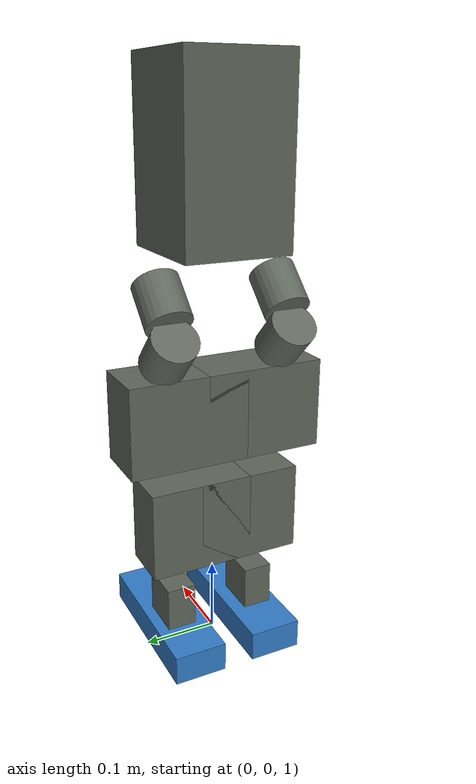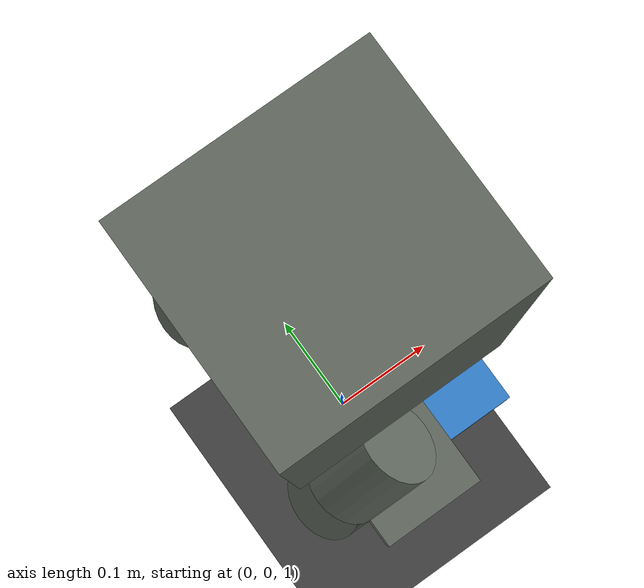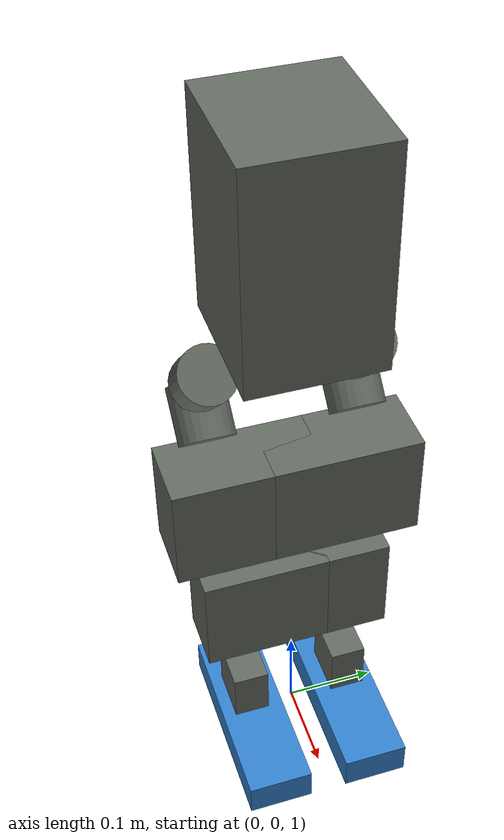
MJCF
<mujoco model="hylion_v6">

  <!-- 모든 각도를 라디안으로 해석 (BHL biped 원본과 동일) -->
  <compiler angle="radian" autolimits="true"/>

  <!-- ── 시뮬레이션 옵션 ──────────────────────────────────────── -->
  <option
    timestep="0.005"
    gravity="0 0 -9.81"
    iterations="50"
    noslip_iterations="4"
    ls_iterations="50"
    integrator="RK4"
  />

  <!-- ── 기본 geom 속성 (self-collision 비활성화) ──────────────── -->
  <!--
    로봇 geom: contype=1  conaffinity=0  → 지면하고만 충돌
    지면 geom: contype=0  conaffinity=1
    → 로봇끼리 self-collision 없음 (IsaacLab enabled_self_collisions=False 대응)
  -->
  <default>
    <geom contype="1" conaffinity="0" friction="0.8 0.1 0.1" condim="3"/>
    <joint damping="0.01" armature="0.007" frictionloss="0.1"/>
    <motor ctrllimited="true" ctrlrange="-6 6"/>
  </default>

  <!-- ── 자산 ───────────────────────────────────────────────── -->
  <asset>
    <texture type="skybox" builtin="gradient" rgb1="0.4 0.6 0.8" rgb2="0 0 0" width="512" height="512"/>
    <texture name="texplane" type="2d" builtin="checker"
             rgb1="0.2 0.2 0.2" rgb2="0.3 0.3 0.3" width="512" height="512"/>
    <material name="matplane" texture="texplane" texrepeat="4 4" reflectance="0.2"/>
    <material name="robot"   rgba="0.38 0.41 0.37 1"/>
    <material name="ankle"   rgba="0.2  0.5  0.8  1"/>
  </asset>

  <!-- ── 월드 바디 ──────────────────────────────────────────── -->
  <worldbody>

    <!-- 조명 -->
    <light name="sun"   pos="0 0 3"  dir="0 0 -1"  diffuse="0.9 0.9 0.9"/>
    <light name="fill"  pos="2 2 2"  dir="-1 -1 -1" diffuse="0.4 0.4 0.4"/>

    <!-- 지면 (conaffinity=1, contype=0 → 로봇하고만 충돌) -->
    <geom name="ground"
          type="plane" size="5 5 0.05"
          contype="0" conaffinity="1"
          friction="0.8 0.1 0.1"
          material="matplane"/>

    <!-- ────────────────────────────────────────────────────────
         BASE  (freejoint → 공중 자유 운동)
    ──────────────────────────────────────────────────────────── -->
    <body name="base" pos="0 0 0.95">

      <!-- 자유 관절: IsaacLab의 floating-base 대응 -->
      <freejoint name="root"/>

      <!-- IMU 센서 부착점 -->
      <site name="imu_site" pos="0.0617 0 0.68" size="0.005"/>

      <!-- base inertial: BHL biped 기준 CoM (z=0.638), 질량 4.83 kg -->
      <!-- body_ipos=[0,0,0.71] 오류 방지 — 자동계산 억제용 -->
      <inertial pos="-0.00462 0.000372 0.6379"
                mass="4.83"
                fullinertia="0.0569 0.0432 0.0270 -6.2e-6 -0.00110 -2.3e-5"/>

      <!-- base 충돌 box (BHL collision box 기준) -->
      <geom name="base_col"
            type="box" size="0.075 0.07 0.115"
            pos="0 0 0.71"
            material="robot"/>

      <!-- ──────────────────────────────────────────────────────
           LEFT LEG
      ──────────────────────────────────────────────────────── -->

      <!-- hip_roll_L -->
      <body name="leg_left_hip_roll"
            pos="-0.029092 0.080000 0.542631"
            quat="0.92388 0.0 0.38268 0.0">
        <joint name="leg_left_hip_roll_joint" type="hinge"
               axis="0 0 1"
               range="-0.174533 1.5708"
               damping="0.01" armature="0.007"/>
        <geom name="lhiproll_col" type="cylinder" size="0.03 0.03" material="robot"/>
        <inertial pos="-0.00411 -0.000113 -0.04646"
                  mass="0.8379"
                  diaginertia="0.0025 0.0025 0.0010"/>

        <!-- hip_yaw_L -->
        <body name="leg_left_hip_yaw"
              pos="0.027000 0.000000 -0.052000"
              quat="0.5 -0.5 0.5 -0.5">
          <joint name="leg_left_hip_yaw_joint" type="hinge"
                 axis="0 0 1"
                 range="-0.981748 0.589049"
                 damping="0.01" armature="0.007"/>
          <geom name="lhipyaw_col" type="cylinder" size="0.03 0.03" material="robot"/>
          <inertial pos="-0.00412 -0.0000863 0.04633"
                    mass="0.8377"
                    diaginertia="0.0025 0.0025 0.0010"/>

          <!-- hip_pitch_L -->
          <body name="leg_left_hip_pitch"
                pos="0.027000 0.000000 0.052000"
                quat="0.65328 0.2706 -0.65328 -0.2706">
            <joint name="leg_left_hip_pitch_joint" type="hinge"
                   axis="0 0 1"
                   range="-1.89805 0.981748"
                   damping="0.01" armature="0.007"/>
            <geom name="lhippitch_col" type="box" size="0.04 0.06 0.08"
                  pos="0 0.06 0" material="robot"/>
            <inertial pos="0.00304 0.12039 0.02109"
                      mass="0.9480"
                      diaginertia="0.004 0.001 0.004"/>

            <!-- knee_L -->
            <body name="leg_left_knee_pitch"
                  pos="0.000000 0.150000 -0.018000"
                  quat="0.0 0.0 0.0 -1.0">
              <joint name="leg_left_knee_pitch_joint" type="hinge"
                     axis="0 0 1"
                     range="0 2.44346"
                     damping="0.01" armature="0.007"/>
              <geom name="lknee_col" type="box" size="0.035 0.06 0.07"
                    pos="0 -0.06 0" material="robot"/>
              <inertial pos="-0.0000414 -0.11225 0.02574"
                        mass="0.6539"
                        diaginertia="0.003 0.001 0.003"/>

              <!-- ankle_pitch_L -->
              <body name="leg_left_ankle_pitch"
                    pos="0.000000 -0.160000 -0.003000"
                    quat="0.0 0.0 0.0 -1.0">
                <joint name="leg_left_ankle_pitch_joint" type="hinge"
                       axis="0 0 1"
                       range="-0.785398 0.785398"
                       damping="0.01" armature="0.002"/>
                <geom name="lanklepitch_col" type="box" size="0.03 0.03 0.02"
                      pos="0.013 0.027 0.027" material="robot"/>
                <inertial pos="0.01311 0.02737 0.02742"
                          mass="0.1062"
                          diaginertia="0.0003 0.0003 0.0002"/>

                <!-- ankle_roll_L -->
                <body name="leg_left_ankle_roll"
                      pos="0.030000 0.050000 0.025000"
                      quat="0.70711 0.0 0.70711 0.0">
                  <joint name="leg_left_ankle_roll_joint" type="hinge"
                         axis="0 0 1"
                         range="-0.261799 0.261799"
                         damping="0.01" armature="0.002"/>
                  <!-- foot collision: BHL biped 기준 foot geom (quat=90°RX: long axis→world-z OK) -->
                  <geom name="lfoot_col" type="box" size="0.036 0.11 0.02"
                        pos="0.0 0.03 0.006" quat="0.707107 0.707107 0 0" material="ankle"/>
                  <inertial pos="0.000023 0.022661 0.019784"
                            mass="0.7065"
                            diaginertia="0.002 0.001 0.002"/>
                </body><!-- ankle_roll_L -->

              </body><!-- ankle_pitch_L -->
            </body><!-- knee_L -->
          </body><!-- hip_pitch_L -->
        </body><!-- hip_yaw_L -->
      </body><!-- hip_roll_L -->

      <!-- ──────────────────────────────────────────────────────
           RIGHT LEG
      ──────────────────────────────────────────────────────── -->

      <!-- hip_roll_R -->
      <body name="leg_right_hip_roll"
            pos="-0.029092 -0.080000 0.542631"
            quat="0.0 0.38268 -0.0 0.92388">
        <joint name="leg_right_hip_roll_joint" type="hinge"
               axis="0 0 1"
               range="-1.5708 0.174533"
               damping="0.01" armature="0.007"/>
        <geom name="rhiproll_col" type="cylinder" size="0.03 0.03" material="robot"/>
        <inertial pos="0.00411 -0.000185 -0.04645"
                  mass="0.8379"
                  diaginertia="0.0025 0.0025 0.0010"/>

        <!-- hip_yaw_R -->
        <body name="leg_right_hip_yaw"
              pos="-0.027000 0.000000 -0.052000"
              quat="0.5 -0.5 -0.5 0.5">
          <joint name="leg_right_hip_yaw_joint" type="hinge"
                 axis="0 0 1"
                 range="-0.589049 0.981748"
                 damping="0.01" armature="0.007"/>
          <geom name="rhipyaw_col" type="cylinder" size="0.03 0.03" material="robot"/>
          <inertial pos="0.00412 -0.0000139 0.04632"
                    mass="0.8377"
                    diaginertia="0.0025 0.0025 0.0010"/>

          <!-- hip_pitch_R -->
          <body name="leg_right_hip_pitch"
                pos="-0.027000 0.000000 0.052000"
                quat="0.65328 0.2706 -0.65328 -0.2706">
            <joint name="leg_right_hip_pitch_joint" type="hinge"
                   axis="0 0 1"
                   range="-1.89805 0.981748"
                   damping="0.01" armature="0.007"/>
            <geom name="rhippitch_col" type="box" size="0.04 0.06 0.08"
                  pos="0 0.06 0" material="robot"/>
            <inertial pos="0.00320 0.12039 -0.02109"
                      mass="0.9480"
                      diaginertia="0.004 0.001 0.004"/>

            <!-- knee_R -->
            <body name="leg_right_knee_pitch"
                  pos="0.000000 0.150000 0.018000"
                  quat="1 0 0 0">
              <joint name="leg_right_knee_pitch_joint" type="hinge"
                     axis="0 0 1"
                     range="0 2.44346"
                     damping="0.01" armature="0.007"/>
              <geom name="rknee_col" type="box" size="0.035 0.06 0.07"
                    pos="0 0.06 0" material="robot"/>
              <inertial pos="-0.0000509 0.11225 -0.02574"
                        mass="0.6539"
                        diaginertia="0.003 0.001 0.003"/>

              <!-- ankle_pitch_R -->
              <body name="leg_right_ankle_pitch"
                    pos="0.000000 0.160000 0.003000"
                    quat="1 0 0 0">
                <joint name="leg_right_ankle_pitch_joint" type="hinge"
                       axis="0 0 1"
                       range="-0.785398 0.785398"
                       damping="0.01" armature="0.002"/>
                <geom name="ranklepitch_col" type="box" size="0.03 0.03 0.02"
                      pos="0.013 0.027 -0.027" material="robot"/>
                <inertial pos="0.01311 0.02737 -0.02742"
                          mass="0.1062"
                          diaginertia="0.0003 0.0003 0.0002"/>

                <!-- ankle_roll_R -->
                <body name="leg_right_ankle_roll"
                      pos="0.030000 0.050000 -0.025000"
                      quat="0.70711 0.0 0.70711 0.0">
                  <joint name="leg_right_ankle_roll_joint" type="hinge"
                         axis="0 0 1"
                         range="-0.261799 0.261799"
                         damping="0.01" armature="0.002"/>
                  <!-- foot collision: BHL biped 기준 foot geom (quat=90°RX: long axis→world-z OK) -->
                  <geom name="rfoot_col" type="box" size="0.036 0.11 0.02"
                        pos="0.0 0.03 0.006" quat="0.707107 0.707107 0 0" material="ankle"/>
                  <inertial pos="0.000023 0.022661 0.019784"
                            mass="0.7065"
                            diaginertia="0.002 0.001 0.002"/>
                </body><!-- ankle_roll_R -->

              </body><!-- ankle_pitch_R -->
            </body><!-- knee_R -->
          </body><!-- hip_pitch_R -->
        </body><!-- hip_yaw_R -->
      </body><!-- hip_roll_R -->

      <body name="soarm_left" pos="0.0 0.12 0.75">
        <inertial pos="0 0 -0.1" mass="3.44" diaginertia="0.025 0.025 0.005"/>
      </body><!-- soarm_left -->

      <body name="soarm_right" pos="0.0 -0.12 0.75">
        <inertial pos="0 0 -0.1" mass="3.44" diaginertia="0.025 0.025 0.005"/>
      </body><!-- soarm_right -->

    </body><!-- base -->
  </worldbody>

  <!-- ── Actuator (motor 타입: ctrl = torque, PD는 외부에서 계산) ── -->
  <actuator>
    <!-- LEFT LEG -->
    <motor name="leg_left_hip_roll_joint"   joint="leg_left_hip_roll_joint"   ctrlrange="-6 6"/>
    <motor name="leg_left_hip_yaw_joint"    joint="leg_left_hip_yaw_joint"    ctrlrange="-6 6"/>
    <motor name="leg_left_hip_pitch_joint"  joint="leg_left_hip_pitch_joint"  ctrlrange="-6 6"/>
    <motor name="leg_left_knee_pitch_joint" joint="leg_left_knee_pitch_joint" ctrlrange="-6 6"/>
    <motor name="leg_left_ankle_pitch_joint" joint="leg_left_ankle_pitch_joint" ctrlrange="-6 6"/>
    <motor name="leg_left_ankle_roll_joint" joint="leg_left_ankle_roll_joint" ctrlrange="-6 6"/>
    <!-- RIGHT LEG -->
    <motor name="leg_right_hip_roll_joint"   joint="leg_right_hip_roll_joint"   ctrlrange="-6 6"/>
    <motor name="leg_right_hip_yaw_joint"    joint="leg_right_hip_yaw_joint"    ctrlrange="-6 6"/>
    <motor name="leg_right_hip_pitch_joint"  joint="leg_right_hip_pitch_joint"  ctrlrange="-6 6"/>
    <motor name="leg_right_knee_pitch_joint" joint="leg_right_knee_pitch_joint" ctrlrange="-6 6"/>
    <motor name="leg_right_ankle_pitch_joint" joint="leg_right_ankle_pitch_joint" ctrlrange="-6 6"/>
    <motor name="leg_right_ankle_roll_joint" joint="leg_right_ankle_roll_joint" ctrlrange="-6 6"/>
  </actuator>

  <!-- ── Sensor ────────────────────────────────────────────────── -->
  <sensor>
    <!-- base_ang_vel: body frame angular velocity (obs [3:6]) -->
    <gyro   name="imu_gyro"        site="imu_site"/>
    <!-- projected_gravity 계산용 quaternion -->
    <framequat name="imu_quat"     objtype="site" objname="imu_site"/>
    <!-- base linear velocity (참고용, obs에는 미포함) -->
    <velocimeter name="imu_linvel" site="imu_site"/>
  </sensor>

</mujoco>
